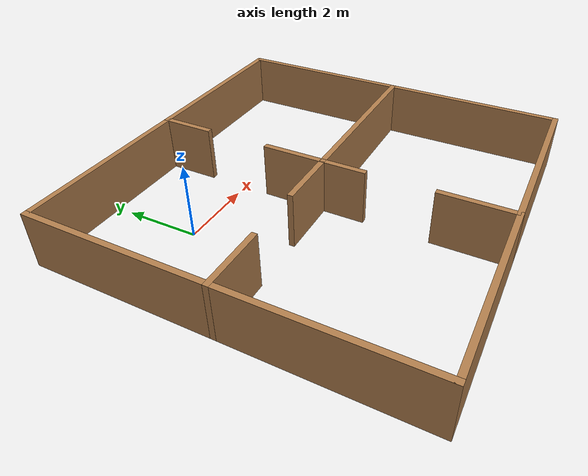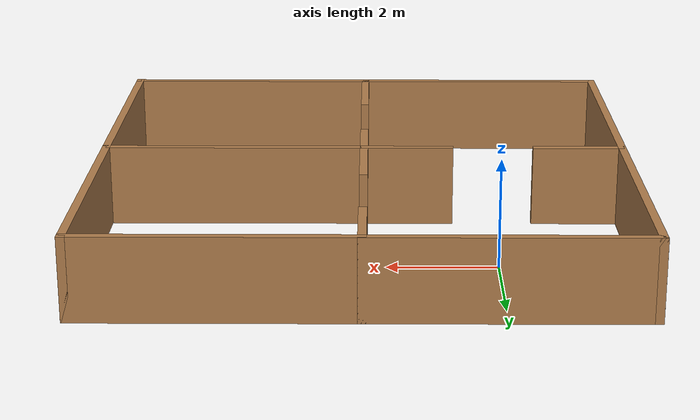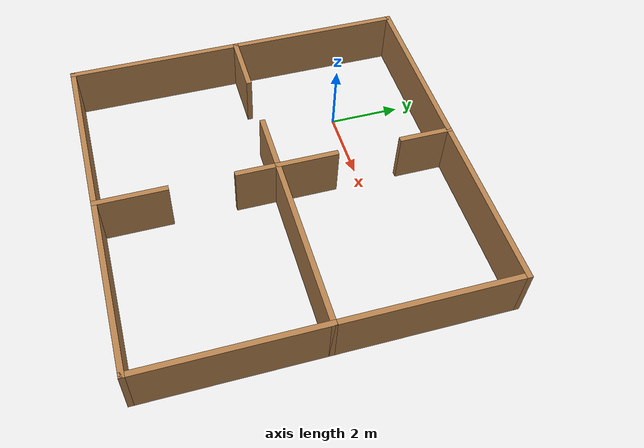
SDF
<?xml version='1.0'?>
<sdf version='1.6'>
  <model name='new_env'>
    <pose frame=''>2.406 -2.377 0 0 -0 0</pose>
    <link name='Wall_0'>
      <collision name='Wall_0_Collision'>
        <geometry>
          <box>
            <size>5 0.15 1.5</size>
          </box>
        </geometry>
        <pose frame=''>0 0 0.75 0 -0 0</pose>
      </collision>
      <visual name='Wall_0_Visual'>
        <pose frame=''>0 0 0.75 0 -0 0</pose>
        <geometry>
          <box>
            <size>5 0.15 1.5</size>
          </box>
        </geometry>
        <material>
          <script>
            <uri>file://media/materials/scripts/gazebo.material</uri>
            <name>Gazebo/Wood</name>
          </script>
          <ambient>1 1 1 1</ambient>
        </material>
        <meta>
          <layer>0</layer>
        </meta>
      </visual>
      <pose frame=''>-4.85 2.425 0 0 -0 1.5708</pose>
    </link>
    <link name='Wall_13'>
      <collision name='Wall_13_Collision'>
        <geometry>
          <box>
            <size>5 0.15 1.5</size>
          </box>
        </geometry>
        <pose frame=''>0 0 0.75 0 -0 0</pose>
      </collision>
      <visual name='Wall_13_Visual'>
        <pose frame=''>0 0 0.75 0 -0 0</pose>
        <geometry>
          <box>
            <size>5 0.15 1.5</size>
          </box>
        </geometry>
        <material>
          <script>
            <uri>file://media/materials/scripts/gazebo.material</uri>
            <name>Gazebo/Wood</name>
          </script>
          <ambient>1 1 1 1</ambient>
        </material>
        <meta>
          <layer>0</layer>
        </meta>
      </visual>
      <pose frame=''>-2.425 4.85 0 0 -0 0</pose>
    </link>
    <link name='Wall_14'>
      <collision name='Wall_14_Collision'>
        <geometry>
          <box>
            <size>1.5 0.15 1.5</size>
          </box>
        </geometry>
        <pose frame=''>0 0 0.75 0 -0 0</pose>
      </collision>
      <visual name='Wall_14_Visual'>
        <pose frame=''>0 0 0.75 0 -0 0</pose>
        <geometry>
          <box>
            <size>1.5 0.15 1.5</size>
          </box>
        </geometry>
        <material>
          <script>
            <uri>file://media/materials/scripts/gazebo.material</uri>
            <name>Gazebo/Wood</name>
          </script>
          <ambient>1 1 1 1</ambient>
        </material>
        <meta>
          <layer>0</layer>
        </meta>
      </visual>
      <pose frame=''>-0 4.175 0 0 -0 -1.5708</pose>
    </link>
    <link name='Wall_16'>
      <collision name='Wall_16_Collision'>
        <geometry>
          <box>
            <size>5 0.15 1.5</size>
          </box>
        </geometry>
        <pose frame=''>0 0 0.75 0 -0 0</pose>
      </collision>
      <visual name='Wall_16_Visual'>
        <pose frame=''>0 0 0.75 0 -0 0</pose>
        <geometry>
          <box>
            <size>5 0.15 1.5</size>
          </box>
        </geometry>
        <material>
          <script>
            <uri>file://media/materials/scripts/gazebo.material</uri>
            <name>Gazebo/Wood</name>
          </script>
          <ambient>1 1 1 1</ambient>
        </material>
        <meta>
          <layer>0</layer>
        </meta>
      </visual>
      <pose frame=''>2.425 4.85 0 0 -0 0</pose>
    </link>
    <link name='Wall_18'>
      <collision name='Wall_18_Collision'>
        <geometry>
          <box>
            <size>5 0.15 1.5</size>
          </box>
        </geometry>
        <pose frame=''>0 0 0.75 0 -0 0</pose>
      </collision>
      <visual name='Wall_18_Visual'>
        <pose frame=''>0 0 0.75 0 -0 0</pose>
        <geometry>
          <box>
            <size>5 0.15 1.5</size>
          </box>
        </geometry>
        <material>
          <script>
            <uri>file://media/materials/scripts/gazebo.material</uri>
            <name>Gazebo/Wood</name>
          </script>
          <ambient>1 1 1 1</ambient>
        </material>
        <meta>
          <layer>0</layer>
        </meta>
      </visual>
      <pose frame=''>2.425 -0 0 0 -0 0</pose>
    </link>
    <link name='Wall_19'>
      <collision name='Wall_19_Collision'>
        <geometry>
          <box>
            <size>5 0.15 1.5</size>
          </box>
        </geometry>
        <pose frame=''>0 0 0.75 0 -0 0</pose>
      </collision>
      <visual name='Wall_19_Visual'>
        <pose frame=''>0 0 0.75 0 -0 0</pose>
        <geometry>
          <box>
            <size>5 0.15 1.5</size>
          </box>
        </geometry>
        <material>
          <script>
            <uri>file://media/materials/scripts/gazebo.material</uri>
            <name>Gazebo/Wood</name>
          </script>
          <ambient>1 1 1 1</ambient>
        </material>
        <meta>
          <layer>0</layer>
        </meta>
      </visual>
      <pose frame=''>4.85 2.425 0 0 -0 1.5708</pose>
    </link>
    <link name='Wall_21'>
      <collision name='Wall_21_Collision'>
        <geometry>
          <box>
            <size>1.75 0.15 1.5</size>
          </box>
        </geometry>
        <pose frame=''>0 0 0.75 0 -0 0</pose>
      </collision>
      <visual name='Wall_21_Visual'>
        <pose frame=''>0 0 0.75 0 -0 0</pose>
        <geometry>
          <box>
            <size>1.75 0.15 1.5</size>
          </box>
        </geometry>
        <material>
          <script>
            <uri>file://media/materials/scripts/gazebo.material</uri>
            <name>Gazebo/Wood</name>
          </script>
          <ambient>1 1 1 1</ambient>
        </material>
        <meta>
          <layer>0</layer>
        </meta>
      </visual>
      <pose frame=''>-4.05 -0 0 0 -0 0</pose>
    </link>
    <link name='Wall_23'>
      <collision name='Wall_23_Collision'>
        <geometry>
          <box>
            <size>1.75 0.15 1.5</size>
          </box>
        </geometry>
        <pose frame=''>0 0 0.75 0 -0 0</pose>
      </collision>
      <visual name='Wall_23_Visual'>
        <pose frame=''>0 0 0.75 0 -0 0</pose>
        <geometry>
          <box>
            <size>1.75 0.15 1.5</size>
          </box>
        </geometry>
        <material>
          <script>
            <uri>file://media/materials/scripts/gazebo.material</uri>
            <name>Gazebo/Wood</name>
          </script>
          <ambient>1 1 1 1</ambient>
        </material>
        <meta>
          <layer>0</layer>
        </meta>
      </visual>
      <pose frame=''>-0.8 -0 0 0 -0 3.14159</pose>
    </link>
    <link name='Wall_25'>
      <collision name='Wall_25_Collision'>
        <geometry>
          <box>
            <size>5 0.15 1.5</size>
          </box>
        </geometry>
        <pose frame=''>0 0 0.75 0 -0 0</pose>
      </collision>
      <visual name='Wall_25_Visual'>
        <pose frame=''>0 0 0.75 0 -0 0</pose>
        <geometry>
          <box>
            <size>5 0.15 1.5</size>
          </box>
        </geometry>
        <material>
          <script>
            <uri>file://media/materials/scripts/gazebo.material</uri>
            <name>Gazebo/Wood</name>
          </script>
          <ambient>1 1 1 1</ambient>
        </material>
        <meta>
          <layer>0</layer>
        </meta>
      </visual>
      <pose frame=''>-4.85 -2.425 0 0 -0 -1.5708</pose>
    </link>
    <link name='Wall_26'>
      <collision name='Wall_26_Collision'>
        <geometry>
          <box>
            <size>5 0.15 1.5</size>
          </box>
        </geometry>
        <pose frame=''>0 0 0.75 0 -0 0</pose>
      </collision>
      <visual name='Wall_26_Visual'>
        <pose frame=''>0 0 0.75 0 -0 0</pose>
        <geometry>
          <box>
            <size>5 0.15 1.5</size>
          </box>
        </geometry>
        <material>
          <script>
            <uri>file://media/materials/scripts/gazebo.material</uri>
            <name>Gazebo/Wood</name>
          </script>
          <ambient>1 1 1 1</ambient>
        </material>
        <meta>
          <layer>0</layer>
        </meta>
      </visual>
      <pose frame=''>-2.425 -4.85 0 0 -0 0</pose>
    </link>
    <link name='Wall_32'>
      <collision name='Wall_32_Collision'>
        <geometry>
          <box>
            <size>5 0.15 1.5</size>
          </box>
        </geometry>
        <pose frame=''>0 0 0.75 0 -0 0</pose>
      </collision>
      <visual name='Wall_32_Visual'>
        <pose frame=''>0 0 0.75 0 -0 0</pose>
        <geometry>
          <box>
            <size>5 0.15 1.5</size>
          </box>
        </geometry>
        <material>
          <script>
            <uri>file://media/materials/scripts/gazebo.material</uri>
            <name>Gazebo/Wood</name>
          </script>
          <ambient>1 1 1 1</ambient>
        </material>
        <meta>
          <layer>0</layer>
        </meta>
      </visual>
      <pose frame=''>4.85 -2.425 0 0 -0 -1.5708</pose>
    </link>
    <link name='Wall_35'>
      <collision name='Wall_35_Collision'>
        <geometry>
          <box>
            <size>1.25 0.15 1.5</size>
          </box>
        </geometry>
        <pose frame=''>0 0 0.75 0 -0 0</pose>
      </collision>
      <visual name='Wall_35_Visual'>
        <pose frame=''>0 0 0.75 0 -0 0</pose>
        <geometry>
          <box>
            <size>1.25 0.15 1.5</size>
          </box>
        </geometry>
        <material>
          <script>
            <uri>file://media/materials/scripts/gazebo.material</uri>
            <name>Gazebo/Wood</name>
          </script>
          <ambient>1 1 1 1</ambient>
        </material>
        <meta>
          <layer>0</layer>
        </meta>
      </visual>
      <pose frame=''>-0 -0.55 0 0 -0 -1.5708</pose>
    </link>
    <link name='Wall_39'>
      <collision name='Wall_39_Collision'>
        <geometry>
          <box>
            <size>2 0.15 1.5</size>
          </box>
        </geometry>
        <pose frame=''>0 0 0.75 0 -0 0</pose>
      </collision>
      <visual name='Wall_39_Visual'>
        <pose frame=''>0 0 0.75 0 -0 0</pose>
        <geometry>
          <box>
            <size>2 0.15 1.5</size>
          </box>
        </geometry>
        <material>
          <script>
            <uri>file://media/materials/scripts/gazebo.material</uri>
            <name>Gazebo/Wood</name>
          </script>
          <ambient>1 1 1 1</ambient>
        </material>
        <meta>
          <layer>0</layer>
        </meta>
      </visual>
      <pose frame=''>-0 -3.925 0 0 -0 1.5708</pose>
    </link>
    <link name='Wall_41'>
      <collision name='Wall_41_Collision'>
        <geometry>
          <box>
            <size>5 0.15 1.5</size>
          </box>
        </geometry>
        <pose frame=''>0 0 0.75 0 -0 0</pose>
      </collision>
      <visual name='Wall_41_Visual'>
        <pose frame=''>0 0 0.75 0 -0 0</pose>
        <geometry>
          <box>
            <size>5 0.15 1.5</size>
          </box>
        </geometry>
        <material>
          <script>
            <uri>file://media/materials/scripts/gazebo.material</uri>
            <name>Gazebo/Wood</name>
          </script>
          <ambient>1 1 1 1</ambient>
        </material>
        <meta>
          <layer>0</layer>
        </meta>
      </visual>
      <pose frame=''>2.425 -4.85 0 0 -0 3.14159</pose>
    </link>
    <link name='Wall_9'>
      <collision name='Wall_9_Collision'>
        <geometry>
          <box>
            <size>1.75 0.15 1.5</size>
          </box>
        </geometry>
        <pose frame=''>0 0 0.75 0 -0 0</pose>
      </collision>
      <visual name='Wall_9_Visual'>
        <pose frame=''>0 0 0.75 0 -0 0</pose>
        <geometry>
          <box>
            <size>1.75 0.15 1.5</size>
          </box>
        </geometry>
        <material>
          <script>
            <uri>file://media/materials/scripts/gazebo.material</uri>
            <name>Gazebo/Wood</name>
          </script>
          <ambient>1 1 1 1</ambient>
        </material>
        <meta>
          <layer>0</layer>
        </meta>
      </visual>
      <pose frame=''>-0 0.8 0 0 -0 1.5708</pose>
    </link>
    <static>1</static>
  </model>
</sdf>
